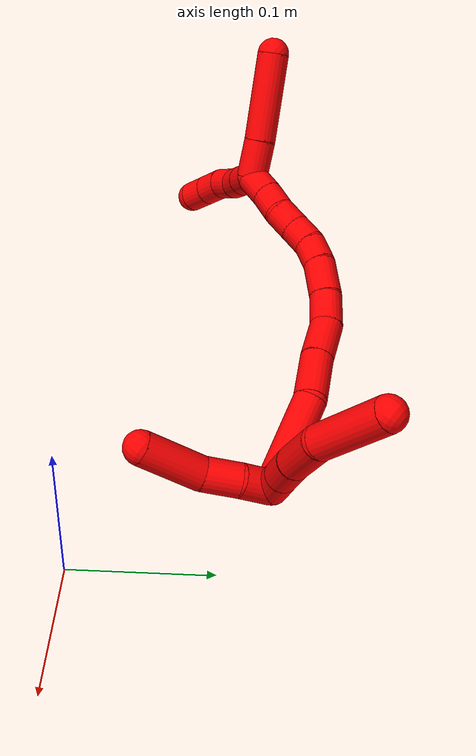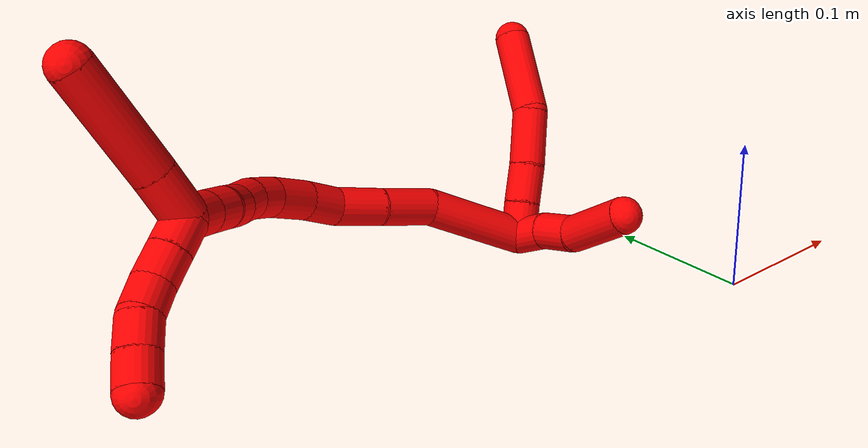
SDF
<sdf version="1.7">
 <world name="default">
  <model name="2">
   <static>0</static>
   <link name="2">
    <collision name="collision-cylinder-e_1_2_8">
     <pose>0.005195 0.010118 0.002071 -1.36886 0.466074 -0.382622</pose>
     <geometry><cylinder><radius>0.0125</radius><length>0.023121</length></cylinder></geometry>
     <surface>
      <friction><ode><mu>1.16</mu><mu2>1.16</mu2><slip1>0</slip1><slip2>0</slip2></ode></friction>
      <contact><ode><kp>1e+06</kp><kd>1</kd><max_vel>0</max_vel><min_depth>0.001</min_depth></ode></contact>
     </surface>
    </collision>
    <visual name="visual-cylinder-e_1_2_8">
     <pose>0.005195 0.010118 0.002071 -1.36886 0.466074 -0.382622</pose>
     <geometry><cylinder><radius>0.0125</radius><length>0.023121</length></cylinder></geometry>
     <material><ambient>1 0 0 1</ambient></material>
    </visual>
    <collision name="collision-cylinder-e_2_8_9">
     <pose>0.015996 0.032218 0.006834 -1.34989 0.428207 -0.344591</pose>
     <geometry><cylinder><radius>0.0125</radius><length>0.027</length></cylinder></geometry>
     <surface>
      <friction><ode><mu>1.16</mu><mu2>1.16</mu2><slip1>0</slip1><slip2>0</slip2></ode></friction>
      <contact><ode><kp>1e+06</kp><kd>1</kd><max_vel>0</max_vel><min_depth>0.001</min_depth></ode></contact>
     </surface>
    </collision>
    <visual name="visual-cylinder-e_2_8_9">
     <pose>0.015996 0.032218 0.006834 -1.34989 0.428207 -0.344591</pose>
     <geometry><cylinder><radius>0.0125</radius><length>0.027</length></cylinder></geometry>
     <material><ambient>1 0 0 1</ambient></material>
    </visual>
    <collision name="collision-cylinder-e_3_9_10">
     <pose>0.030707 0.060914 0.014832 -1.26331 0.47892 -0.353529</pose>
     <geometry><cylinder><radius>0.0125</radius><length>0.039517</length></cylinder></geometry>
     <surface>
      <friction><ode><mu>1.16</mu><mu2>1.16</mu2><slip1>0</slip1><slip2>0</slip2></ode></friction>
      <contact><ode><kp>1e+06</kp><kd>1</kd><max_vel>0</max_vel><min_depth>0.001</min_depth></ode></contact>
     </surface>
    </collision>
    <visual name="visual-cylinder-e_3_9_10">
     <pose>0.030707 0.060914 0.014832 -1.26331 0.47892 -0.353529</pose>
     <geometry><cylinder><radius>0.0125</radius><length>0.039517</length></cylinder></geometry>
     <material><ambient>1 0 0 1</ambient></material>
    </visual>
    <collision name="collision-cylinder-e_4_10_6">
     <pose>0.058108 0.09664 0.03479 -0.914277 0.651283 -0.32918</pose>
     <geometry><cylinder><radius>0.0125</radius><length>0.060362</length></cylinder></geometry>
     <surface>
      <friction><ode><mu>1.16</mu><mu2>1.16</mu2><slip1>0</slip1><slip2>0</slip2></ode></friction>
      <contact><ode><kp>1e+06</kp><kd>1</kd><max_vel>0</max_vel><min_depth>0.001</min_depth></ode></contact>
     </surface>
    </collision>
    <visual name="visual-cylinder-e_4_10_6">
     <pose>0.058108 0.09664 0.03479 -0.914277 0.651283 -0.32918</pose>
     <geometry><cylinder><radius>0.0125</radius><length>0.060362</length></cylinder></geometry>
     <material><ambient>1 0 0 1</ambient></material>
    </visual>
    <collision name="collision-cylinder-e_1_2_11">
     <pose>-0.004803 0.006804 -0.008802 -2.48352 -0.407545 1.08846</pose>
     <geometry><cylinder><radius>0.0125</radius><length>0.024236</length></cylinder></geometry>
     <surface>
      <friction><ode><mu>1.16</mu><mu2>1.16</mu2><slip1>0</slip1><slip2>0</slip2></ode></friction>
      <contact><ode><kp>1e+06</kp><kd>1</kd><max_vel>0</max_vel><min_depth>0.001</min_depth></ode></contact>
     </surface>
    </collision>
    <visual name="visual-cylinder-e_1_2_11">
     <pose>-0.004803 0.006804 -0.008802 -2.48352 -0.407545 1.08846</pose>
     <geometry><cylinder><radius>0.0125</radius><length>0.024236</length></cylinder></geometry>
     <material><ambient>1 0 0 1</ambient></material>
    </visual>
    <collision name="collision-cylinder-e_2_11_12">
     <pose>-0.015988 0.018355 -0.028801 -2.74067 -0.483254 1.76258</pose>
     <geometry><cylinder><radius>0.0125</radius><length>0.027469</length></cylinder></geometry>
     <surface>
      <friction><ode><mu>1.16</mu><mu2>1.16</mu2><slip1>0</slip1><slip2>0</slip2></ode></friction>
      <contact><ode><kp>1e+06</kp><kd>1</kd><max_vel>0</max_vel><min_depth>0.001</min_depth></ode></contact>
     </surface>
    </collision>
    <visual name="visual-cylinder-e_2_11_12">
     <pose>-0.015988 0.018355 -0.028801 -2.74067 -0.483254 1.76258</pose>
     <geometry><cylinder><radius>0.0125</radius><length>0.027469</length></cylinder></geometry>
     <material><ambient>1 0 0 1</ambient></material>
    </visual>
    <collision name="collision-cylinder-e_3_12_5">
     <pose>-0.028095 0.037172 -0.058769 -2.49832 -0.239352 0.692688</pose>
     <geometry><cylinder><radius>0.0125</radius><length>0.048295</length></cylinder></geometry>
     <surface>
      <friction><ode><mu>1.16</mu><mu2>1.16</mu2><slip1>0</slip1><slip2>0</slip2></ode></friction>
      <contact><ode><kp>1e+06</kp><kd>1</kd><max_vel>0</max_vel><min_depth>0.001</min_depth></ode></contact>
     </surface>
    </collision>
    <visual name="visual-cylinder-e_3_12_5">
     <pose>-0.028095 0.037172 -0.058769 -2.49832 -0.239352 0.692688</pose>
     <geometry><cylinder><radius>0.0125</radius><length>0.048295</length></cylinder></geometry>
     <material><ambient>1 0 0 1</ambient></material>
    </visual>
    <collision name="collision-cylinder-e_1_2_13">
     <pose>0.033374 -0.008298 -0.009923 2.44516 1.20103 2.16684</pose>
     <geometry><cylinder><radius>0.0125</radius><length>0.071587</length></cylinder></geometry>
     <surface>
      <friction><ode><mu>1.16</mu><mu2>1.16</mu2><slip1>0</slip1><slip2>0</slip2></ode></friction>
      <contact><ode><kp>1e+06</kp><kd>1</kd><max_vel>0</max_vel><min_depth>0.001</min_depth></ode></contact>
     </surface>
    </collision>
    <visual name="visual-cylinder-e_1_2_13">
     <pose>0.033374 -0.008298 -0.009923 2.44516 1.20103 2.16684</pose>
     <geometry><cylinder><radius>0.0125</radius><length>0.071587</length></cylinder></geometry>
     <material><ambient>1 0 0 1</ambient></material>
    </visual>
    <collision name="collision-cylinder-e_2_13_14">
     <pose>0.081176 -0.024898 -0.02893 2.40108 0.864653 1.74288</pose>
     <geometry><cylinder><radius>0.0125</radius><length>0.037926</length></cylinder></geometry>
     <surface>
      <friction><ode><mu>1.16</mu><mu2>1.16</mu2><slip1>0</slip1><slip2>0</slip2></ode></friction>
      <contact><ode><kp>1e+06</kp><kd>1</kd><max_vel>0</max_vel><min_depth>0.001</min_depth></ode></contact>
     </surface>
    </collision>
    <visual name="visual-cylinder-e_2_13_14">
     <pose>0.081176 -0.024898 -0.02893 2.40108 0.864653 1.74288</pose>
     <geometry><cylinder><radius>0.0125</radius><length>0.037926</length></cylinder></geometry>
     <material><ambient>1 0 0 1</ambient></material>
    </visual>
    <collision name="collision-cylinder-e_3_14_15">
     <pose>0.108705 -0.04063 -0.044477 2.28677 0.926142 1.66246</pose>
     <geometry><cylinder><radius>0.0125</radius><length>0.03278</length></cylinder></geometry>
     <surface>
      <friction><ode><mu>1.16</mu><mu2>1.16</mu2><slip1>0</slip1><slip2>0</slip2></ode></friction>
      <contact><ode><kp>1e+06</kp><kd>1</kd><max_vel>0</max_vel><min_depth>0.001</min_depth></ode></contact>
     </surface>
    </collision>
    <visual name="visual-cylinder-e_3_14_15">
     <pose>0.108705 -0.04063 -0.044477 2.28677 0.926142 1.66246</pose>
     <geometry><cylinder><radius>0.0125</radius><length>0.03278</length></cylinder></geometry>
     <material><ambient>1 0 0 1</ambient></material>
    </visual>
    <collision name="collision-cylinder-e_4_15_16">
     <pose>0.131255 -0.050861 -0.058888 2.80284 0.842625 2.4125</pose>
     <geometry><cylinder><radius>0.0125</radius><length>0.025321</length></cylinder></geometry>
     <surface>
      <friction><ode><mu>1.16</mu><mu2>1.16</mu2><slip1>0</slip1><slip2>0</slip2></ode></friction>
      <contact><ode><kp>1e+06</kp><kd>1</kd><max_vel>0</max_vel><min_depth>0.001</min_depth></ode></contact>
     </surface>
    </collision>
    <visual name="visual-cylinder-e_4_15_16">
     <pose>0.131255 -0.050861 -0.058888 2.80284 0.842625 2.4125</pose>
     <geometry><cylinder><radius>0.0125</radius><length>0.025321</length></cylinder></geometry>
     <material><ambient>1 0 0 1</ambient></material>
    </visual>
    <collision name="collision-cylinder-e_5_16_17">
     <pose>0.150044 -0.057237 -0.077458 2.81687 0.694598 2.29168</pose>
     <geometry><cylinder><radius>0.0125</radius><length>0.029179</length></cylinder></geometry>
     <surface>
      <friction><ode><mu>1.16</mu><mu2>1.16</mu2><slip1>0</slip1><slip2>0</slip2></ode></friction>
      <contact><ode><kp>1e+06</kp><kd>1</kd><max_vel>0</max_vel><min_depth>0.001</min_depth></ode></contact>
     </surface>
    </collision>
    <visual name="visual-cylinder-e_5_16_17">
     <pose>0.150044 -0.057237 -0.077458 2.81687 0.694598 2.29168</pose>
     <geometry><cylinder><radius>0.0125</radius><length>0.029179</length></cylinder></geometry>
     <material><ambient>1 0 0 1</ambient></material>
    </visual>
    <collision name="collision-cylinder-e_6_17_18">
     <pose>0.164186 -0.063428 -0.096841 2.85157 0.483825 2.07279</pose>
     <geometry><cylinder><radius>0.0125</radius><length>0.020653</length></cylinder></geometry>
     <surface>
      <friction><ode><mu>1.16</mu><mu2>1.16</mu2><slip1>0</slip1><slip2>0</slip2></ode></friction>
      <contact><ode><kp>1e+06</kp><kd>1</kd><max_vel>0</max_vel><min_depth>0.001</min_depth></ode></contact>
     </surface>
    </collision>
    <visual name="visual-cylinder-e_6_17_18">
     <pose>0.164186 -0.063428 -0.096841 2.85157 0.483825 2.07279</pose>
     <geometry><cylinder><radius>0.0125</radius><length>0.020653</length></cylinder></geometry>
     <material><ambient>1 0 0 1</ambient></material>
    </visual>
    <collision name="collision-cylinder-e_7_18_19">
     <pose>0.171258 -0.06859 -0.115153 2.88093 0.225631 1.42556</pose>
     <geometry><cylinder><radius>0.0125</radius><length>0.020286</length></cylinder></geometry>
     <surface>
      <friction><ode><mu>1.16</mu><mu2>1.16</mu2><slip1>0</slip1><slip2>0</slip2></ode></friction>
      <contact><ode><kp>1e+06</kp><kd>1</kd><max_vel>0</max_vel><min_depth>0.001</min_depth></ode></contact>
     </surface>
    </collision>
    <visual name="visual-cylinder-e_7_18_19">
     <pose>0.171258 -0.06859 -0.115153 2.88093 0.225631 1.42556</pose>
     <geometry><cylinder><radius>0.0125</radius><length>0.020286</length></cylinder></geometry>
     <material><ambient>1 0 0 1</ambient></material>
    </visual>
    <collision name="collision-cylinder-e_8_19_20">
     <pose>0.175617 -0.071893 -0.134624 3.06559 0.207013 2.43988</pose>
     <geometry><cylinder><radius>0.0125</radius><length>0.020329</length></cylinder></geometry>
     <surface>
      <friction><ode><mu>1.16</mu><mu2>1.16</mu2><slip1>0</slip1><slip2>0</slip2></ode></friction>
      <contact><ode><kp>1e+06</kp><kd>1</kd><max_vel>0</max_vel><min_depth>0.001</min_depth></ode></contact>
     </surface>
    </collision>
    <visual name="visual-cylinder-e_8_19_20">
     <pose>0.175617 -0.071893 -0.134624 3.06559 0.207013 2.43988</pose>
     <geometry><cylinder><radius>0.0125</radius><length>0.020329</length></cylinder></geometry>
     <material><ambient>1 0 0 1</ambient></material>
    </visual>
    <collision name="collision-cylinder-e_9_20_21">
     <pose>0.181053 -0.075087 -0.153776 2.88333 0.337043 1.83776</pose>
     <geometry><cylinder><radius>0.0125</radius><length>0.020239</length></cylinder></geometry>
     <surface>
      <friction><ode><mu>1.16</mu><mu2>1.16</mu2><slip1>0</slip1><slip2>0</slip2></ode></friction>
      <contact><ode><kp>1e+06</kp><kd>1</kd><max_vel>0</max_vel><min_depth>0.001</min_depth></ode></contact>
     </surface>
    </collision>
    <visual name="visual-cylinder-e_9_20_21">
     <pose>0.181053 -0.075087 -0.153776 2.88333 0.337043 1.83776</pose>
     <geometry><cylinder><radius>0.0125</radius><length>0.020239</length></cylinder></geometry>
     <material><ambient>1 0 0 1</ambient></material>
    </visual>
    <collision name="collision-cylinder-e_10_21_1">
     <pose>0.187102 -0.07944 -0.173342 2.95844 0.251786 1.88619</pose>
     <geometry><cylinder><radius>0.0125</radius><length>0.0217</length></cylinder></geometry>
     <surface>
      <friction><ode><mu>1.16</mu><mu2>1.16</mu2><slip1>0</slip1><slip2>0</slip2></ode></friction>
      <contact><ode><kp>1e+06</kp><kd>1</kd><max_vel>0</max_vel><min_depth>0.001</min_depth></ode></contact>
     </surface>
    </collision>
    <visual name="visual-cylinder-e_10_21_1">
     <pose>0.187102 -0.07944 -0.173342 2.95844 0.251786 1.88619</pose>
     <geometry><cylinder><radius>0.0125</radius><length>0.0217</length></cylinder></geometry>
     <material><ambient>1 0 0 1</ambient></material>
    </visual>
    <collision name="collision-cylinder-e_1_1_22">
     <pose>0.202805 -0.07526 -0.188719 -2.26223 1.0241 -1.74789</pose>
     <geometry><cylinder><radius>0.0125</radius><length>0.030435</length></cylinder></geometry>
     <surface>
      <friction><ode><mu>1.16</mu><mu2>1.16</mu2><slip1>0</slip1><slip2>0</slip2></ode></friction>
      <contact><ode><kp>1e+06</kp><kd>1</kd><max_vel>0</max_vel><min_depth>0.001</min_depth></ode></contact>
     </surface>
    </collision>
    <visual name="visual-cylinder-e_1_1_22">
     <pose>0.202805 -0.07526 -0.188719 -2.26223 1.0241 -1.74789</pose>
     <geometry><cylinder><radius>0.0125</radius><length>0.030435</length></cylinder></geometry>
     <material><ambient>1 0 0 1</ambient></material>
    </visual>
    <collision name="collision-cylinder-e_2_22_4">
     <pose>0.244876 -0.055852 -0.207453 -2.37014 0.989597 -1.85129</pose>
     <geometry><cylinder><radius>0.0125</radius><length>0.069565</length></cylinder></geometry>
     <surface>
      <friction><ode><mu>1.16</mu><mu2>1.16</mu2><slip1>0</slip1><slip2>0</slip2></ode></friction>
      <contact><ode><kp>1e+06</kp><kd>1</kd><max_vel>0</max_vel><min_depth>0.001</min_depth></ode></contact>
     </surface>
    </collision>
    <visual name="visual-cylinder-e_2_22_4">
     <pose>0.244876 -0.055852 -0.207453 -2.37014 0.989597 -1.85129</pose>
     <geometry><cylinder><radius>0.0125</radius><length>0.069565</length></cylinder></geometry>
     <material><ambient>1 0 0 1</ambient></material>
    </visual>
    <collision name="collision-cylinder-e_1_1_23">
     <pose>0.188468 -0.089801 -0.188856 2.12105 -0.13418 -0.238945</pose>
     <geometry><cylinder><radius>0.0125</radius><length>0.02</length></cylinder></geometry>
     <surface>
      <friction><ode><mu>1.16</mu><mu2>1.16</mu2><slip1>0</slip1><slip2>0</slip2></ode></friction>
      <contact><ode><kp>1e+06</kp><kd>1</kd><max_vel>0</max_vel><min_depth>0.001</min_depth></ode></contact>
     </surface>
    </collision>
    <visual name="visual-cylinder-e_1_1_23">
     <pose>0.188468 -0.089801 -0.188856 2.12105 -0.13418 -0.238945</pose>
     <geometry><cylinder><radius>0.0125</radius><length>0.02</length></cylinder></geometry>
     <material><ambient>1 0 0 1</ambient></material>
    </visual>
    <collision name="collision-cylinder-e_2_23_24">
     <pose>0.18577 -0.106761 -0.199106 2.10781 -0.136428 -0.239228</pose>
     <geometry><cylinder><radius>0.0125</radius><length>0.02</length></cylinder></geometry>
     <surface>
      <friction><ode><mu>1.16</mu><mu2>1.16</mu2><slip1>0</slip1><slip2>0</slip2></ode></friction>
      <contact><ode><kp>1e+06</kp><kd>1</kd><max_vel>0</max_vel><min_depth>0.001</min_depth></ode></contact>
     </surface>
    </collision>
    <visual name="visual-cylinder-e_2_23_24">
     <pose>0.18577 -0.106761 -0.199106 2.10781 -0.136428 -0.239228</pose>
     <geometry><cylinder><radius>0.0125</radius><length>0.02</length></cylinder></geometry>
     <material><ambient>1 0 0 1</ambient></material>
    </visual>
    <collision name="collision-cylinder-e_3_24_25">
     <pose>0.182463 -0.121983 -0.211329 2.38831 -0.19593 -0.487093</pose>
     <geometry><cylinder><radius>0.0125</radius><length>0.02</length></cylinder></geometry>
     <surface>
      <friction><ode><mu>1.16</mu><mu2>1.16</mu2><slip1>0</slip1><slip2>0</slip2></ode></friction>
      <contact><ode><kp>1e+06</kp><kd>1</kd><max_vel>0</max_vel><min_depth>0.001</min_depth></ode></contact>
     </surface>
    </collision>
    <visual name="visual-cylinder-e_3_24_25">
     <pose>0.182463 -0.121983 -0.211329 2.38831 -0.19593 -0.487093</pose>
     <geometry><cylinder><radius>0.0125</radius><length>0.02</length></cylinder></geometry>
     <material><ambient>1 0 0 1</ambient></material>
    </visual>
    <collision name="collision-cylinder-e_4_25_26">
     <pose>0.175773 -0.135269 -0.224337 2.29802 -0.494135 -1.02416</pose>
     <geometry><cylinder><radius>0.0125</radius><length>0.02</length></cylinder></geometry>
     <surface>
      <friction><ode><mu>1.16</mu><mu2>1.16</mu2><slip1>0</slip1><slip2>0</slip2></ode></friction>
      <contact><ode><kp>1e+06</kp><kd>1</kd><max_vel>0</max_vel><min_depth>0.001</min_depth></ode></contact>
     </surface>
    </collision>
    <visual name="visual-cylinder-e_4_25_26">
     <pose>0.175773 -0.135269 -0.224337 2.29802 -0.494135 -1.02416</pose>
     <geometry><cylinder><radius>0.0125</radius><length>0.02</length></cylinder></geometry>
     <material><ambient>1 0 0 1</ambient></material>
    </visual>
    <collision name="collision-cylinder-e_5_26_3">
     <pose>0.165858 -0.147997 -0.236141 2.33972 -0.543628 -1.16326</pose>
     <geometry><cylinder><radius>0.0125</radius><length>0.02</length></cylinder></geometry>
     <surface>
      <friction><ode><mu>1.16</mu><mu2>1.16</mu2><slip1>0</slip1><slip2>0</slip2></ode></friction>
      <contact><ode><kp>1e+06</kp><kd>1</kd><max_vel>0</max_vel><min_depth>0.001</min_depth></ode></contact>
     </surface>
    </collision>
    <visual name="visual-cylinder-e_5_26_3">
     <pose>0.165858 -0.147997 -0.236141 2.33972 -0.543628 -1.16326</pose>
     <geometry><cylinder><radius>0.0125</radius><length>0.02</length></cylinder></geometry>
     <material><ambient>1 0 0 1</ambient></material>
    </visual>
    <collision name="collision-sphere-3">
     <pose>0.160686 -0.154147 -0.242092 0 -0 0</pose>
     <geometry><sphere><radius>0.0125</radius></sphere></geometry>
     <surface>
      <friction><ode><mu>1.16</mu><mu2>1.16</mu2><slip1>0</slip1><slip2>0</slip2></ode></friction>
      <contact><ode><kp>1e+06</kp><kd>1</kd><max_vel>0</max_vel><min_depth>0.001</min_depth></ode></contact>
     </surface>
    </collision>
    <visual name="visual-sphere-3">
     <pose>0.160686 -0.154147 -0.242092 0 -0 0</pose>
     <geometry><sphere><radius>0.0125</radius></sphere></geometry>
     <material><ambient>1 0 0 1</ambient></material>
    </visual>
    <collision name="collision-sphere-26">
     <pose>0.171031 -0.141846 -0.23019 0 -0 0</pose>
     <geometry><sphere><radius>0.0125</radius></sphere></geometry>
     <surface>
      <friction><ode><mu>1.16</mu><mu2>1.16</mu2><slip1>0</slip1><slip2>0</slip2></ode></friction>
      <contact><ode><kp>1e+06</kp><kd>1</kd><max_vel>0</max_vel><min_depth>0.001</min_depth></ode></contact>
     </surface>
    </collision>
    <visual name="visual-sphere-26">
     <pose>0.171031 -0.141846 -0.23019 0 -0 0</pose>
     <geometry><sphere><radius>0.0125</radius></sphere></geometry>
     <material><ambient>1 0 0 1</ambient></material>
    </visual>
    <collision name="collision-sphere-25">
     <pose>0.180516 -0.128693 -0.218484 0 -0 0</pose>
     <geometry><sphere><radius>0.0125</radius></sphere></geometry>
     <surface>
      <friction><ode><mu>1.16</mu><mu2>1.16</mu2><slip1>0</slip1><slip2>0</slip2></ode></friction>
      <contact><ode><kp>1e+06</kp><kd>1</kd><max_vel>0</max_vel><min_depth>0.001</min_depth></ode></contact>
     </surface>
    </collision>
    <visual name="visual-sphere-25">
     <pose>0.180516 -0.128693 -0.218484 0 -0 0</pose>
     <geometry><sphere><radius>0.0125</radius></sphere></geometry>
     <material><ambient>1 0 0 1</ambient></material>
    </visual>
    <collision name="collision-sphere-24">
     <pose>0.18441 -0.115274 -0.204174 0 -0 0</pose>
     <geometry><sphere><radius>0.0125</radius></sphere></geometry>
     <surface>
      <friction><ode><mu>1.16</mu><mu2>1.16</mu2><slip1>0</slip1><slip2>0</slip2></ode></friction>
      <contact><ode><kp>1e+06</kp><kd>1</kd><max_vel>0</max_vel><min_depth>0.001</min_depth></ode></contact>
     </surface>
    </collision>
    <visual name="visual-sphere-24">
     <pose>0.18441 -0.115274 -0.204174 0 -0 0</pose>
     <geometry><sphere><radius>0.0125</radius></sphere></geometry>
     <material><ambient>1 0 0 1</ambient></material>
    </visual>
    <collision name="collision-sphere-23">
     <pose>0.18713 -0.098249 -0.194038 0 -0 0</pose>
     <geometry><sphere><radius>0.0125</radius></sphere></geometry>
     <surface>
      <friction><ode><mu>1.16</mu><mu2>1.16</mu2><slip1>0</slip1><slip2>0</slip2></ode></friction>
      <contact><ode><kp>1e+06</kp><kd>1</kd><max_vel>0</max_vel><min_depth>0.001</min_depth></ode></contact>
     </surface>
    </collision>
    <visual name="visual-sphere-23">
     <pose>0.18713 -0.098249 -0.194038 0 -0 0</pose>
     <geometry><sphere><radius>0.0125</radius></sphere></geometry>
     <material><ambient>1 0 0 1</ambient></material>
    </visual>
    <collision name="collision-sphere-4">
     <pose>0.273947 -0.042538 -0.221144 0 -0 0</pose>
     <geometry><sphere><radius>0.0125</radius></sphere></geometry>
     <surface>
      <friction><ode><mu>1.16</mu><mu2>1.16</mu2><slip1>0</slip1><slip2>0</slip2></ode></friction>
      <contact><ode><kp>1e+06</kp><kd>1</kd><max_vel>0</max_vel><min_depth>0.001</min_depth></ode></contact>
     </surface>
    </collision>
    <visual name="visual-sphere-4">
     <pose>0.273947 -0.042538 -0.221144 0 -0 0</pose>
     <geometry><sphere><radius>0.0125</radius></sphere></geometry>
     <material><ambient>1 0 0 1</ambient></material>
    </visual>
    <collision name="collision-sphere-22">
     <pose>0.215805 -0.069165 -0.193763 0 -0 0</pose>
     <geometry><sphere><radius>0.0125</radius></sphere></geometry>
     <surface>
      <friction><ode><mu>1.16</mu><mu2>1.16</mu2><slip1>0</slip1><slip2>0</slip2></ode></friction>
      <contact><ode><kp>1e+06</kp><kd>1</kd><max_vel>0</max_vel><min_depth>0.001</min_depth></ode></contact>
     </surface>
    </collision>
    <visual name="visual-sphere-22">
     <pose>0.215805 -0.069165 -0.193763 0 -0 0</pose>
     <geometry><sphere><radius>0.0125</radius></sphere></geometry>
     <material><ambient>1 0 0 1</ambient></material>
    </visual>
    <collision name="collision-sphere-1">
     <pose>0.189805 -0.081354 -0.183674 0 -0 0</pose>
     <geometry><sphere><radius>0.0125</radius></sphere></geometry>
     <surface>
      <friction><ode><mu>1.16</mu><mu2>1.16</mu2><slip1>0</slip1><slip2>0</slip2></ode></friction>
      <contact><ode><kp>1e+06</kp><kd>1</kd><max_vel>0</max_vel><min_depth>0.001</min_depth></ode></contact>
     </surface>
    </collision>
    <visual name="visual-sphere-1">
     <pose>0.189805 -0.081354 -0.183674 0 -0 0</pose>
     <geometry><sphere><radius>0.0125</radius></sphere></geometry>
     <material><ambient>1 0 0 1</ambient></material>
    </visual>
    <collision name="collision-sphere-21">
     <pose>0.184399 -0.077526 -0.16301 0 -0 0</pose>
     <geometry><sphere><radius>0.0125</radius></sphere></geometry>
     <surface>
      <friction><ode><mu>1.16</mu><mu2>1.16</mu2><slip1>0</slip1><slip2>0</slip2></ode></friction>
      <contact><ode><kp>1e+06</kp><kd>1</kd><max_vel>0</max_vel><min_depth>0.001</min_depth></ode></contact>
     </surface>
    </collision>
    <visual name="visual-sphere-21">
     <pose>0.184399 -0.077526 -0.16301 0 -0 0</pose>
     <geometry><sphere><radius>0.0125</radius></sphere></geometry>
     <material><ambient>1 0 0 1</ambient></material>
    </visual>
    <collision name="collision-sphere-11">
     <pose>-0.009606 0.013608 -0.017604 0 -0 0</pose>
     <geometry><sphere><radius>0.0125</radius></sphere></geometry>
     <surface>
      <friction><ode><mu>1.16</mu><mu2>1.16</mu2><slip1>0</slip1><slip2>0</slip2></ode></friction>
      <contact><ode><kp>1e+06</kp><kd>1</kd><max_vel>0</max_vel><min_depth>0.001</min_depth></ode></contact>
     </surface>
    </collision>
    <visual name="visual-sphere-11">
     <pose>-0.009606 0.013608 -0.017604 0 -0 0</pose>
     <geometry><sphere><radius>0.0125</radius></sphere></geometry>
     <material><ambient>1 0 0 1</ambient></material>
    </visual>
    <collision name="collision-sphere-6">
     <pose>0.076404 0.115653 0.049441 0 -0 0</pose>
     <geometry><sphere><radius>0.0125</radius></sphere></geometry>
     <surface>
      <friction><ode><mu>1.16</mu><mu2>1.16</mu2><slip1>0</slip1><slip2>0</slip2></ode></friction>
      <contact><ode><kp>1e+06</kp><kd>1</kd><max_vel>0</max_vel><min_depth>0.001</min_depth></ode></contact>
     </surface>
    </collision>
    <visual name="visual-sphere-6">
     <pose>0.076404 0.115653 0.049441 0 -0 0</pose>
     <geometry><sphere><radius>0.0125</radius></sphere></geometry>
     <material><ambient>1 0 0 1</ambient></material>
    </visual>
    <collision name="collision-sphere-10">
     <pose>0.039812 0.077626 0.02014 0 -0 0</pose>
     <geometry><sphere><radius>0.0125</radius></sphere></geometry>
     <surface>
      <friction><ode><mu>1.16</mu><mu2>1.16</mu2><slip1>0</slip1><slip2>0</slip2></ode></friction>
      <contact><ode><kp>1e+06</kp><kd>1</kd><max_vel>0</max_vel><min_depth>0.001</min_depth></ode></contact>
     </surface>
    </collision>
    <visual name="visual-sphere-10">
     <pose>0.039812 0.077626 0.02014 0 -0 0</pose>
     <geometry><sphere><radius>0.0125</radius></sphere></geometry>
     <material><ambient>1 0 0 1</ambient></material>
    </visual>
    <collision name="collision-sphere-9">
     <pose>0.021602 0.044201 0.009525 0 -0 0</pose>
     <geometry><sphere><radius>0.0125</radius></sphere></geometry>
     <surface>
      <friction><ode><mu>1.16</mu><mu2>1.16</mu2><slip1>0</slip1><slip2>0</slip2></ode></friction>
      <contact><ode><kp>1e+06</kp><kd>1</kd><max_vel>0</max_vel><min_depth>0.001</min_depth></ode></contact>
     </surface>
    </collision>
    <visual name="visual-sphere-9">
     <pose>0.021602 0.044201 0.009525 0 -0 0</pose>
     <geometry><sphere><radius>0.0125</radius></sphere></geometry>
     <material><ambient>1 0 0 1</ambient></material>
    </visual>
    <collision name="collision-sphere-2">
     <geometry><sphere><radius>0.0125</radius></sphere></geometry>
     <surface>
      <friction><ode><mu>1.16</mu><mu2>1.16</mu2><slip1>0</slip1><slip2>0</slip2></ode></friction>
      <contact><ode><kp>1e+06</kp><kd>1</kd><max_vel>0</max_vel><min_depth>0.001</min_depth></ode></contact>
     </surface>
    </collision>
    <visual name="visual-sphere-2">
     <geometry><sphere><radius>0.0125</radius></sphere></geometry>
     <material><ambient>1 0 0 1</ambient></material>
    </visual>
    <collision name="collision-sphere-19">
     <pose>0.173528 -0.071137 -0.124705 0 -0 0</pose>
     <geometry><sphere><radius>0.0125</radius></sphere></geometry>
     <surface>
      <friction><ode><mu>1.16</mu><mu2>1.16</mu2><slip1>0</slip1><slip2>0</slip2></ode></friction>
      <contact><ode><kp>1e+06</kp><kd>1</kd><max_vel>0</max_vel><min_depth>0.001</min_depth></ode></contact>
     </surface>
    </collision>
    <visual name="visual-sphere-19">
     <pose>0.173528 -0.071137 -0.124705 0 -0 0</pose>
     <geometry><sphere><radius>0.0125</radius></sphere></geometry>
     <material><ambient>1 0 0 1</ambient></material>
    </visual>
    <collision name="collision-sphere-8">
     <pose>0.01039 0.020236 0.004143 0 -0 0</pose>
     <geometry><sphere><radius>0.0125</radius></sphere></geometry>
     <surface>
      <friction><ode><mu>1.16</mu><mu2>1.16</mu2><slip1>0</slip1><slip2>0</slip2></ode></friction>
      <contact><ode><kp>1e+06</kp><kd>1</kd><max_vel>0</max_vel><min_depth>0.001</min_depth></ode></contact>
     </surface>
    </collision>
    <visual name="visual-sphere-8">
     <pose>0.01039 0.020236 0.004143 0 -0 0</pose>
     <geometry><sphere><radius>0.0125</radius></sphere></geometry>
     <material><ambient>1 0 0 1</ambient></material>
    </visual>
    <collision name="collision-sphere-12">
     <pose>-0.02237 0.023101 -0.039999 0 -0 0</pose>
     <geometry><sphere><radius>0.0125</radius></sphere></geometry>
     <surface>
      <friction><ode><mu>1.16</mu><mu2>1.16</mu2><slip1>0</slip1><slip2>0</slip2></ode></friction>
      <contact><ode><kp>1e+06</kp><kd>1</kd><max_vel>0</max_vel><min_depth>0.001</min_depth></ode></contact>
     </surface>
    </collision>
    <visual name="visual-sphere-12">
     <pose>-0.02237 0.023101 -0.039999 0 -0 0</pose>
     <geometry><sphere><radius>0.0125</radius></sphere></geometry>
     <material><ambient>1 0 0 1</ambient></material>
    </visual>
    <collision name="collision-sphere-5">
     <pose>-0.033819 0.051243 -0.07754 0 -0 0</pose>
     <geometry><sphere><radius>0.0125</radius></sphere></geometry>
     <surface>
      <friction><ode><mu>1.16</mu><mu2>1.16</mu2><slip1>0</slip1><slip2>0</slip2></ode></friction>
      <contact><ode><kp>1e+06</kp><kd>1</kd><max_vel>0</max_vel><min_depth>0.001</min_depth></ode></contact>
     </surface>
    </collision>
    <visual name="visual-sphere-5">
     <pose>-0.033819 0.051243 -0.07754 0 -0 0</pose>
     <geometry><sphere><radius>0.0125</radius></sphere></geometry>
     <material><ambient>1 0 0 1</ambient></material>
    </visual>
    <collision name="collision-sphere-13">
     <pose>0.066748 -0.016596 -0.019847 0 -0 0</pose>
     <geometry><sphere><radius>0.0125</radius></sphere></geometry>
     <surface>
      <friction><ode><mu>1.16</mu><mu2>1.16</mu2><slip1>0</slip1><slip2>0</slip2></ode></friction>
      <contact><ode><kp>1e+06</kp><kd>1</kd><max_vel>0</max_vel><min_depth>0.001</min_depth></ode></contact>
     </surface>
    </collision>
    <visual name="visual-sphere-13">
     <pose>0.066748 -0.016596 -0.019847 0 -0 0</pose>
     <geometry><sphere><radius>0.0125</radius></sphere></geometry>
     <material><ambient>1 0 0 1</ambient></material>
    </visual>
    <collision name="collision-sphere-14">
     <pose>0.095605 -0.0332 -0.038012 0 -0 0</pose>
     <geometry><sphere><radius>0.0125</radius></sphere></geometry>
     <surface>
      <friction><ode><mu>1.16</mu><mu2>1.16</mu2><slip1>0</slip1><slip2>0</slip2></ode></friction>
      <contact><ode><kp>1e+06</kp><kd>1</kd><max_vel>0</max_vel><min_depth>0.001</min_depth></ode></contact>
     </surface>
    </collision>
    <visual name="visual-sphere-14">
     <pose>0.095605 -0.0332 -0.038012 0 -0 0</pose>
     <geometry><sphere><radius>0.0125</radius></sphere></geometry>
     <material><ambient>1 0 0 1</ambient></material>
    </visual>
    <collision name="collision-sphere-15">
     <pose>0.121806 -0.048061 -0.050941 0 -0 0</pose>
     <geometry><sphere><radius>0.0125</radius></sphere></geometry>
     <surface>
      <friction><ode><mu>1.16</mu><mu2>1.16</mu2><slip1>0</slip1><slip2>0</slip2></ode></friction>
      <contact><ode><kp>1e+06</kp><kd>1</kd><max_vel>0</max_vel><min_depth>0.001</min_depth></ode></contact>
     </surface>
    </collision>
    <visual name="visual-sphere-15">
     <pose>0.121806 -0.048061 -0.050941 0 -0 0</pose>
     <geometry><sphere><radius>0.0125</radius></sphere></geometry>
     <material><ambient>1 0 0 1</ambient></material>
    </visual>
    <collision name="collision-sphere-16">
     <pose>0.140705 -0.053661 -0.066835 0 -0 0</pose>
     <geometry><sphere><radius>0.0125</radius></sphere></geometry>
     <surface>
      <friction><ode><mu>1.16</mu><mu2>1.16</mu2><slip1>0</slip1><slip2>0</slip2></ode></friction>
      <contact><ode><kp>1e+06</kp><kd>1</kd><max_vel>0</max_vel><min_depth>0.001</min_depth></ode></contact>
     </surface>
    </collision>
    <visual name="visual-sphere-16">
     <pose>0.140705 -0.053661 -0.066835 0 -0 0</pose>
     <geometry><sphere><radius>0.0125</radius></sphere></geometry>
     <material><ambient>1 0 0 1</ambient></material>
    </visual>
    <collision name="collision-sphere-17">
     <pose>0.159382 -0.060814 -0.088082 0 -0 0</pose>
     <geometry><sphere><radius>0.0125</radius></sphere></geometry>
     <surface>
      <friction><ode><mu>1.16</mu><mu2>1.16</mu2><slip1>0</slip1><slip2>0</slip2></ode></friction>
      <contact><ode><kp>1e+06</kp><kd>1</kd><max_vel>0</max_vel><min_depth>0.001</min_depth></ode></contact>
     </surface>
    </collision>
    <visual name="visual-sphere-17">
     <pose>0.159382 -0.060814 -0.088082 0 -0 0</pose>
     <geometry><sphere><radius>0.0125</radius></sphere></geometry>
     <material><ambient>1 0 0 1</ambient></material>
    </visual>
    <collision name="collision-sphere-18">
     <pose>0.168989 -0.066042 -0.105601 0 -0 0</pose>
     <geometry><sphere><radius>0.0125</radius></sphere></geometry>
     <surface>
      <friction><ode><mu>1.16</mu><mu2>1.16</mu2><slip1>0</slip1><slip2>0</slip2></ode></friction>
      <contact><ode><kp>1e+06</kp><kd>1</kd><max_vel>0</max_vel><min_depth>0.001</min_depth></ode></contact>
     </surface>
    </collision>
    <visual name="visual-sphere-18">
     <pose>0.168989 -0.066042 -0.105601 0 -0 0</pose>
     <geometry><sphere><radius>0.0125</radius></sphere></geometry>
     <material><ambient>1 0 0 1</ambient></material>
    </visual>
    <collision name="collision-sphere-20">
     <pose>0.177706 -0.072648 -0.144543 0 -0 0</pose>
     <geometry><sphere><radius>0.0125</radius></sphere></geometry>
     <surface>
      <friction><ode><mu>1.16</mu><mu2>1.16</mu2><slip1>0</slip1><slip2>0</slip2></ode></friction>
      <contact><ode><kp>1e+06</kp><kd>1</kd><max_vel>0</max_vel><min_depth>0.001</min_depth></ode></contact>
     </surface>
    </collision>
    <visual name="visual-sphere-20">
     <pose>0.177706 -0.072648 -0.144543 0 -0 0</pose>
     <geometry><sphere><radius>0.0125</radius></sphere></geometry>
     <material><ambient>1 0 0 1</ambient></material>
    </visual>
    <inertial>
     <pose>0.105903 -0.026184 -0.084344 0 -0 0</pose>
     <mass>0.75</mass>
     <inertia><ixx>5e-05</ixx><ixy>0</ixy><ixz>0</ixz><iyy>9.4e-05</iyy><iyz>0</iyz><izz>-0.000133</izz></inertia>
    </inertial>
   </link>
   <pose>-0.072375 0.13434 0.011494 1.94039 -0.612972 2.34013</pose>
  </model>
 </world>
</sdf>
